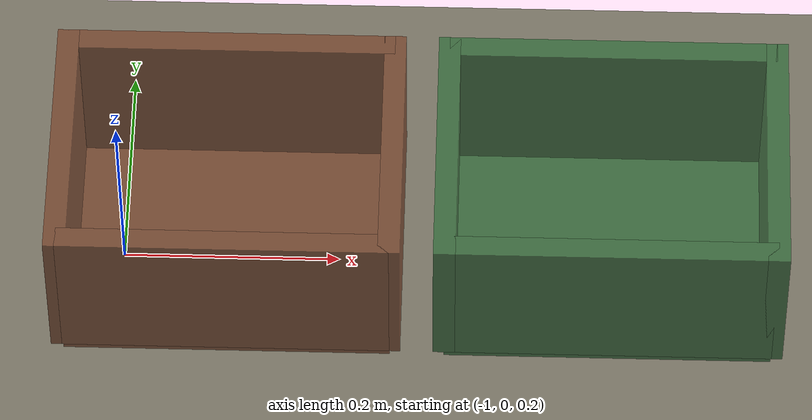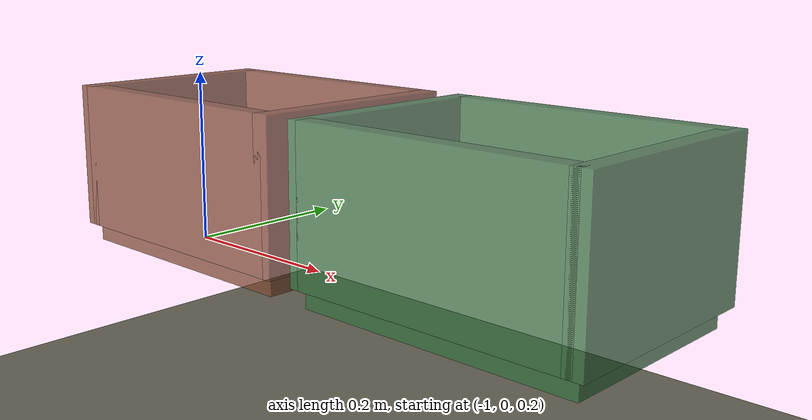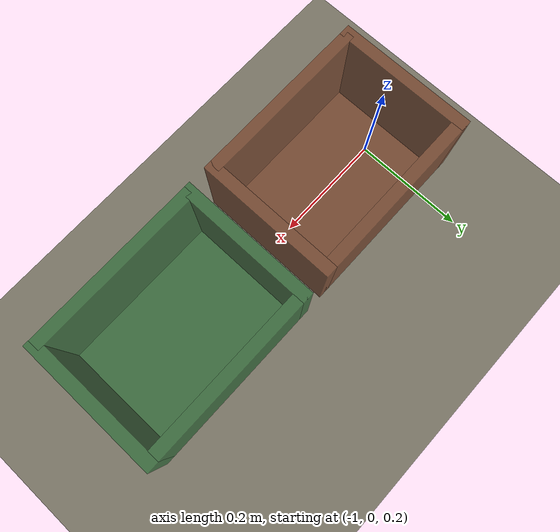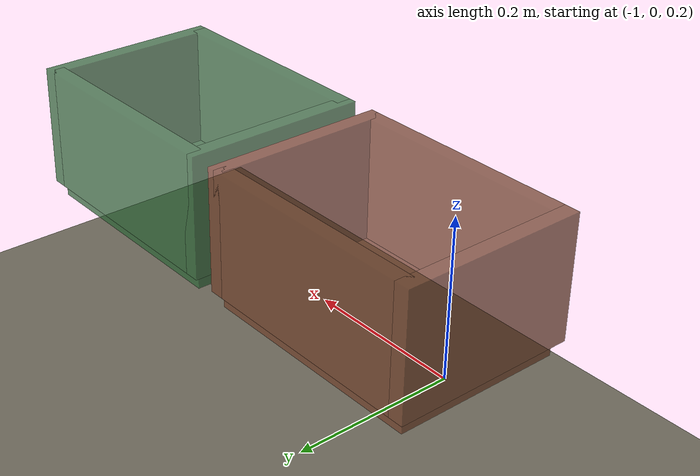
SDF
<sdf version="1.9">
 <world name="pick_place_detachable_test">
  <plugin name="gz::sim::systems::Physics" filename="gz-sim-physics-system"/>
  <plugin name="gz::sim::systems::UserCommands" filename="gz-sim-user-commands-system"/>
  <plugin name="gz::sim::systems::SceneBroadcaster" filename="gz-sim-scene-broadcaster-system"/>
  <plugin name="gz::sim::systems::Contact" filename="gz-sim-contact-system"/>
  <gravity>0 0 -9.81</gravity>
  <scene>
   <grid>true</grid>
   <ambient>0.55 0.55 0.55 1</ambient>
   <background>0.82 0.86 0.9 1</background>
   <shadows>false</shadows>
  </scene>
  <light name="sun" type="directional">
   <cast_shadows>false</cast_shadows>
   <pose>0 0 10 0 0 0</pose>
   <diffuse>0.9 0.9 0.82 1</diffuse>
   <specular>0.2 0.2 0.2 1</specular>
   <direction>-0.6 0.25 -1</direction>
  </light>
  <model name="ground_plane">
   <static>true</static>
   <link name="link">
    <collision name="collision">
     <geometry><plane><normal>0 0 1</normal><size>6 6</size></plane></geometry>
    </collision>
    <visual name="visual">
     <geometry><plane><normal>0 0 1</normal><size>6 6</size></plane></geometry>
     <material><ambient>0.48 0.46 0.40 1</ambient><diffuse>0.48 0.46 0.40 1</diffuse></material>
    </visual>
   </link>
  </model>
  <model name="good_pick_basket">
   <static>true</static>
   <pose>-0.55 0.0 0.0 0 0 0</pose>
   <link name="link">
    <collision name="floor_collision">
     <pose>0 0 0.22 0 0 0</pose>
     <geometry><box><size>0.30 0.22 0.02</size></box></geometry>
    </collision>
    <collision name="front_collision">
     <pose>0.15 0 0.31 0 0 0</pose>
     <geometry><box><size>0.02 0.24 0.16</size></box></geometry>
    </collision>
    <collision name="back_collision">
     <pose>-0.15 0 0.31 0 0 0</pose>
     <geometry><box><size>0.02 0.24 0.16</size></box></geometry>
    </collision>
    <collision name="left_collision">
     <pose>0 0.11 0.31 0 0 0</pose>
     <geometry><box><size>0.30 0.02 0.16</size></box></geometry>
    </collision>
    <collision name="right_collision">
     <pose>0 -0.11 0.31 0 0 0</pose>
     <geometry><box><size>0.30 0.02 0.16</size></box></geometry>
    </collision>
    <visual name="floor_visual">
     <pose>0 0 0.22 0 0 0</pose>
     <geometry><box><size>0.30 0.22 0.02</size></box></geometry>
     <material><ambient>0.20 0.45 0.24 0.75</ambient><diffuse>0.20 0.45 0.24 0.75</diffuse></material>
    </visual>
    <visual name="front_visual">
     <pose>0.15 0 0.31 0 0 0</pose>
     <geometry><box><size>0.02 0.24 0.16</size></box></geometry>
     <material><ambient>0.20 0.45 0.24 0.75</ambient><diffuse>0.20 0.45 0.24 0.75</diffuse></material>
    </visual>
    <visual name="back_visual">
     <pose>-0.15 0 0.31 0 0 0</pose>
     <geometry><box><size>0.02 0.24 0.16</size></box></geometry>
     <material><ambient>0.20 0.45 0.24 0.75</ambient><diffuse>0.20 0.45 0.24 0.75</diffuse></material>
    </visual>
    <visual name="left_visual">
     <pose>0 0.11 0.31 0 0 0</pose>
     <geometry><box><size>0.30 0.02 0.16</size></box></geometry>
     <material><ambient>0.20 0.45 0.24 0.75</ambient><diffuse>0.20 0.45 0.24 0.75</diffuse></material>
    </visual>
    <visual name="right_visual">
     <pose>0 -0.11 0.31 0 0 0</pose>
     <geometry><box><size>0.30 0.02 0.16</size></box></geometry>
     <material><ambient>0.20 0.45 0.24 0.75</ambient><diffuse>0.20 0.45 0.24 0.75</diffuse></material>
    </visual>
   </link>
  </model>
  <model name="bad_pick_basket">
   <static>true</static>
   <pose>-0.90 0.0 0.0 0 0 0</pose>
   <link name="link">
    <collision name="floor_collision">
     <pose>0 0 0.22 0 0 0</pose>
     <geometry><box><size>0.30 0.22 0.02</size></box></geometry>
    </collision>
    <collision name="front_collision">
     <pose>0.15 0 0.31 0 0 0</pose>
     <geometry><box><size>0.02 0.24 0.16</size></box></geometry>
    </collision>
    <collision name="back_collision">
     <pose>-0.15 0 0.31 0 0 0</pose>
     <geometry><box><size>0.02 0.24 0.16</size></box></geometry>
    </collision>
    <collision name="left_collision">
     <pose>0 0.11 0.31 0 0 0</pose>
     <geometry><box><size>0.30 0.02 0.16</size></box></geometry>
    </collision>
    <collision name="right_collision">
     <pose>0 -0.11 0.31 0 0 0</pose>
     <geometry><box><size>0.30 0.02 0.16</size></box></geometry>
    </collision>
    <visual name="floor_visual">
     <pose>0 0 0.22 0 0 0</pose>
     <geometry><box><size>0.30 0.22 0.02</size></box></geometry>
     <material><ambient>0.50 0.28 0.18 0.75</ambient><diffuse>0.50 0.28 0.18 0.75</diffuse></material>
    </visual>
    <visual name="front_visual">
     <pose>0.15 0 0.31 0 0 0</pose>
     <geometry><box><size>0.02 0.24 0.16</size></box></geometry>
     <material><ambient>0.50 0.28 0.18 0.75</ambient><diffuse>0.50 0.28 0.18 0.75</diffuse></material>
    </visual>
    <visual name="back_visual">
     <pose>-0.15 0 0.31 0 0 0</pose>
     <geometry><box><size>0.02 0.24 0.16</size></box></geometry>
     <material><ambient>0.50 0.28 0.18 0.75</ambient><diffuse>0.50 0.28 0.18 0.75</diffuse></material>
    </visual>
    <visual name="left_visual">
     <pose>0 0.11 0.31 0 0 0</pose>
     <geometry><box><size>0.30 0.02 0.16</size></box></geometry>
     <material><ambient>0.50 0.28 0.18 0.75</ambient><diffuse>0.50 0.28 0.18 0.75</diffuse></material>
    </visual>
    <visual name="right_visual">
     <pose>0 -0.11 0.31 0 0 0</pose>
     <geometry><box><size>0.30 0.02 0.16</size></box></geometry>
     <material><ambient>0.50 0.28 0.18 0.75</ambient><diffuse>0.50 0.28 0.18 0.75</diffuse></material>
    </visual>
   </link>
  </model>
 </world>
</sdf>
